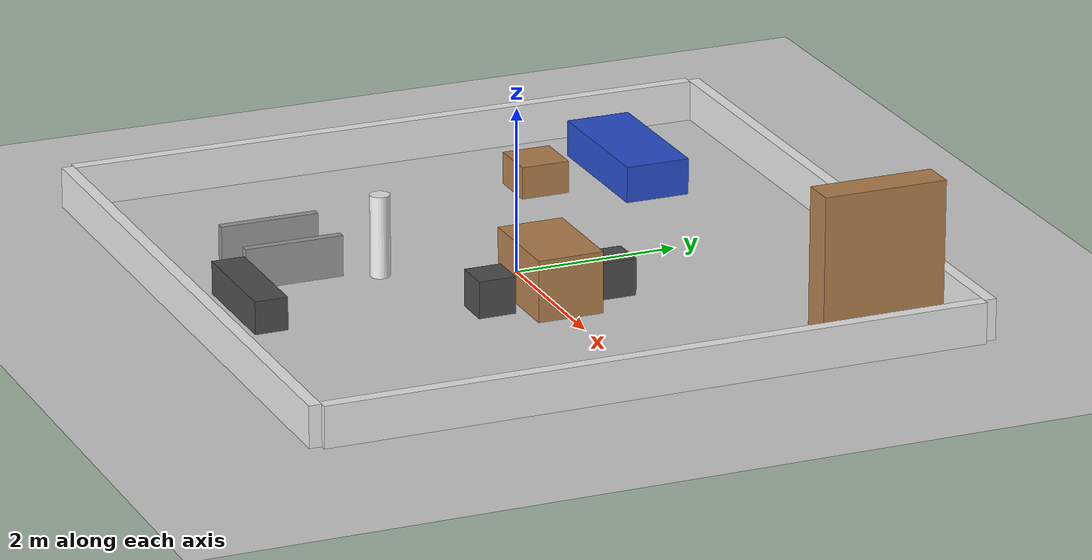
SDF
<?xml version="1.0"?>
<sdf version="1.6">
  <world name="indoor_obstacles">

    <!-- PHYSICS — disesuaikan untuk planar_move plugin                    -->
    <physics type="ode">
      <max_step_size>0.004</max_step_size>
      <real_time_factor>1.0</real_time_factor>
      <real_time_update_rate>250</real_time_update_rate>
      <ode>
        <solver>
          <type>quick</type>
          <iters>50</iters>
          <sor>1.3</sor>
        </solver>
        <constraints>
          <cfm>0</cfm>
          <erp>0.2</erp>
          <contact_max_correcting_vel>100</contact_max_correcting_vel>
          <contact_surface_layer>0.001</contact_surface_layer>
        </constraints>
      </ode>
    </physics>

    <!-- ENVIRONMENT                                                        -->
    <include>
      <uri>model://sun</uri>
    </include>

    <!-- Ground plane dengan friction rendah untuk omni robot -->
    <model name="ground_plane">
      <static>true</static>
      <link name="link">
        <collision name="collision">
          <geometry>
            <plane>
              <normal>0 0 1</normal>
              <size>20 20</size>
            </plane>
          </geometry>
          <surface>
            <friction>
              <ode>
                <mu>0.8</mu>
                <mu2>0.8</mu2>
              </ode>
            </friction>
          </surface>
        </collision>
        <visual name="visual">
          <cast_shadows>false</cast_shadows>
          <geometry>
            <plane>
              <normal>0 0 1</normal>
              <size>20 20</size>
            </plane>
          </geometry>
          <material>
            <script>
              <uri>file://media/materials/scripts/gazebo.material</uri>
              <name>Gazebo/Grey</name>
            </script>
          </material>
        </visual>
      </link>
    </model>

    <!-- DINDING LUAR — 8m x 8m room                                       -->
    <!-- Tinggi: 0.5m — cukup untuk LiDAR detect (sensor z=0.12m+0.05m)  -->
    <!-- Tebal: 0.15m — tebal cukup agar tidak ghosting di costmap          -->

    <!-- Dinding Utara (y=+4) -->
    <model name="wall_north">
      <static>true</static>
      <pose>0 4.075 0.25 0 0 0</pose>
      <link name="link">
        <collision name="collision">
          <geometry><box><size>8.15 0.15 0.5</size></box></geometry>
        </collision>
        <visual name="visual">
          <geometry><box><size>8.15 0.15 0.5</size></box></geometry>
          <material><script><name>Gazebo/White</name></script></material>
        </visual>
      </link>
    </model>

    <!-- Dinding Selatan (y=-4) -->
    <model name="wall_south">
      <static>true</static>
      <pose>0 -4.075 0.25 0 0 0</pose>
      <link name="link">
        <collision name="collision">
          <geometry><box><size>8.15 0.15 0.5</size></box></geometry>
        </collision>
        <visual name="visual">
          <geometry><box><size>8.15 0.15 0.5</size></box></geometry>
          <material><script><name>Gazebo/White</name></script></material>
        </visual>
      </link>
    </model>

    <!-- Dinding Timur (x=+4) -->
    <model name="wall_east">
      <static>true</static>
      <pose>4.075 0 0.25 0 0 0</pose>
      <link name="link">
        <collision name="collision">
          <geometry><box><size>0.15 8.0 0.5</size></box></geometry>
        </collision>
        <visual name="visual">
          <geometry><box><size>0.15 8.0 0.5</size></box></geometry>
          <material><script><name>Gazebo/White</name></script></material>
        </visual>
      </link>
    </model>

    <!-- Dinding Barat (x=-4) -->
    <model name="wall_west">
      <static>true</static>
      <pose>-4.075 0 0.25 0 0 0</pose>
      <link name="link">
        <collision name="collision">
          <geometry><box><size>0.15 8.0 0.5</size></box></geometry>
        </collision>
        <visual name="visual">
          <geometry><box><size>0.15 8.0 0.5</size></box></geometry>
          <material><script><name>Gazebo/White</name></script></material>
        </visual>
      </link>
    </model>

    <!-- OBSTACLE ZONE A — Pojok Barat Laut: Area Sofa + Coffee Table      -->
    <!-- Clearance ke dinding: >0.5m. Clearance antar obj: >0.5m          -->

    <!-- Sofa (1.8m x 0.8m, tinggi 0.45m) -->
    <model name="sofa">
      <static>true</static>
      <pose>-2.5 2.5 0.225 0 0 0</pose>
      <link name="link">
        <collision name="collision">
          <geometry><box><size>1.8 0.8 0.45</size></box></geometry>
        </collision>
        <visual name="visual">
          <geometry><box><size>1.8 0.8 0.45</size></box></geometry>
          <material><script><name>Gazebo/Blue</name></script></material>
        </visual>
      </link>
    </model>

    <!-- Coffee table (0.6m x 0.6m, tinggi 0.4m) — di depan sofa -->
    <!-- Gap sofa-table: 2.5-0.4=2.1, table_y=2.5-0.4-0.3-0.6/2=1.5 -->
    <model name="coffee_table">
      <static>true</static>
      <pose>-2.5 1.3 0.2 0 0 0</pose>
      <link name="link">
        <collision name="collision">
          <geometry><box><size>0.6 0.6 0.4</size></box></geometry>
        </collision>
        <visual name="visual">
          <geometry><box><size>0.6 0.6 0.4</size></box></geometry>
          <material><script><name>Gazebo/Wood</name></script></material>
        </visual>
      </link>
    </model>

    <!-- OBSTACLE ZONE B — Tengah: Meja Makan + 2 Kursi                   -->
    <!-- Meja: 1.2m x 0.8m. Kursi: 0.45m x 0.45m                        -->
    <!-- Gap kursi ke meja: 0.1m (kursi attached ke meja saat static)     -->

    <!-- Meja makan -->
    <model name="dining_table">
      <static>true</static>
      <pose>1.0 0.0 0.375 0 0 0</pose>
      <link name="link">
        <collision name="collision">
          <geometry><box><size>1.2 0.8 0.75</size></box></geometry>
        </collision>
        <visual name="visual">
          <geometry><box><size>1.2 0.8 0.75</size></box></geometry>
          <material><script><name>Gazebo/Wood</name></script></material>
        </visual>
      </link>
    </model>

    <!--
      Kursi 1 — sisi utara meja (y = 0.0+0.4+0.045+0.225 = 0.67)
      Posisi collision: footprint kursi 0.45x0.45 di lantai
      Dimodelkan sebagai BOX footprint — lebih aman untuk costmap
    -->
    <model name="chair_north">
      <static>true</static>
      <pose>1.0 0.75 0.225 0 0 0</pose>
      <link name="link">
        <collision name="collision">
          <geometry><box><size>0.45 0.45 0.45</size></box></geometry>
        </collision>
        <visual name="visual">
          <geometry><box><size>0.45 0.45 0.45</size></box></geometry>
          <material><script><name>Gazebo/DarkGrey</name></script></material>
        </visual>
      </link>
    </model>

    <!-- Kursi 2 — sisi selatan meja -->
    <model name="chair_south">
      <static>true</static>
      <pose>1.0 -0.75 0.225 0 0 0</pose>
      <link name="link">
        <collision name="collision">
          <geometry><box><size>0.45 0.45 0.45</size></box></geometry>
        </collision>
        <visual name="visual">
          <geometry><box><size>0.45 0.45 0.45</size></box></geometry>
          <material><script><name>Gazebo/DarkGrey</name></script></material>
        </visual>
      </link>
    </model>

    <!-- OBSTACLE ZONE C — Pojok Timur Laut: Lemari / Bookshelf           -->
    <!-- 0.4m x 1.5m — obstacle besar, dekat dinding timur                -->
    <model name="bookshelf">
      <static>true</static>
      <!-- x=4.0-0.15(wall)-0.2(half_depth)-0.1(clearance)=3.55 -->
      <pose>3.35 3.0 0.9 0 0 0</pose>
      <link name="link">
        <collision name="collision">
          <geometry><box><size>0.4 1.5 1.8</size></box></geometry>
        </collision>
        <visual name="visual">
          <geometry><box><size>0.4 1.5 1.8</size></box></geometry>
          <material><script><name>Gazebo/Wood</name></script></material>
        </visual>
      </link>
    </model>

    <!-- OBSTACLE ZONE D — Tengah Selatan: TV Stand                       -->
    <model name="tv_stand">
      <static>true</static>
      <pose>0.0 -3.3 0.2 0 0 0</pose>
      <link name="link">
        <collision name="collision">
          <geometry><box><size>1.4 0.4 0.4</size></box></geometry>
        </collision>
        <visual name="visual">
          <geometry><box><size>1.4 0.4 0.4</size></box></geometry>
          <material><script><name>Gazebo/DarkGrey</name></script></material>
        </visual>
      </link>
    </model>

    <!-- OBSTACLE ZONE E — Tengah: Kolom / Tiang Struktural               -->
    <!-- Obstacle silindris untuk variasi bentuk — uji path planning       -->
    <model name="pillar_1">
      <static>true</static>
      <pose>-0.5 -1.5 0.5 0 0 0</pose>
      <link name="link">
        <collision name="collision">
          <geometry><cylinder><radius>0.12</radius><length>1.0</length></cylinder></geometry>
        </collision>
        <visual name="visual">
          <geometry><cylinder><radius>0.12</radius><length>1.0</length></cylinder></geometry>
          <material><script><name>Gazebo/White</name></script></material>
        </visual>
      </link>
    </model>

    <!-- OBSTACLE ZONE F — Corridor sempit: partisi dinding               -->
    <!-- Gap antara partisi: 0.6m — minimal 3x robot footprint width      -->
    <!-- Robot width: 0.14m + clearance 0.5m = butuh setidaknya 0.6m     -->

    <!-- Partisi kiri (memaksa robot lewat gap sempit) -->
    <model name="partition_left">
      <static>true</static>
      <pose>-1.5 -2.5 0.25 0 0 0</pose>
      <link name="link">
        <collision name="collision">
          <geometry><box><size>0.1 1.2 0.5</size></box></geometry>
        </collision>
        <visual name="visual">
          <geometry><box><size>0.1 1.2 0.5</size></box></geometry>
          <material><script><name>Gazebo/Grey</name></script></material>
        </visual>
      </link>
    </model>

    <!-- Partisi kanan — gap 0.7m dari partisi kiri -->
    <!-- x kanan = -1.5 + 0.1/2 + 0.7 + 0.1/2 = -0.7 -->
    <model name="partition_right">
      <static>true</static>
      <pose>-0.7 -2.5 0.25 0 0 0</pose>
      <link name="link">
        <collision name="collision">
          <geometry><box><size>0.1 1.2 0.5</size></box></geometry>
        </collision>
        <visual name="visual">
          <geometry><box><size>0.1 1.2 0.5</size></box></geometry>
          <material><script><name>Gazebo/Grey</name></script></material>
        </visual>
      </link>
    </model>

    <!-- ROBOT SPAWN POINT — clear area di pojok barat daya               -->
    <!-- Sesuai spawn_z = 0.071 dari URDF v6                              -->

  </world>
</sdf>
